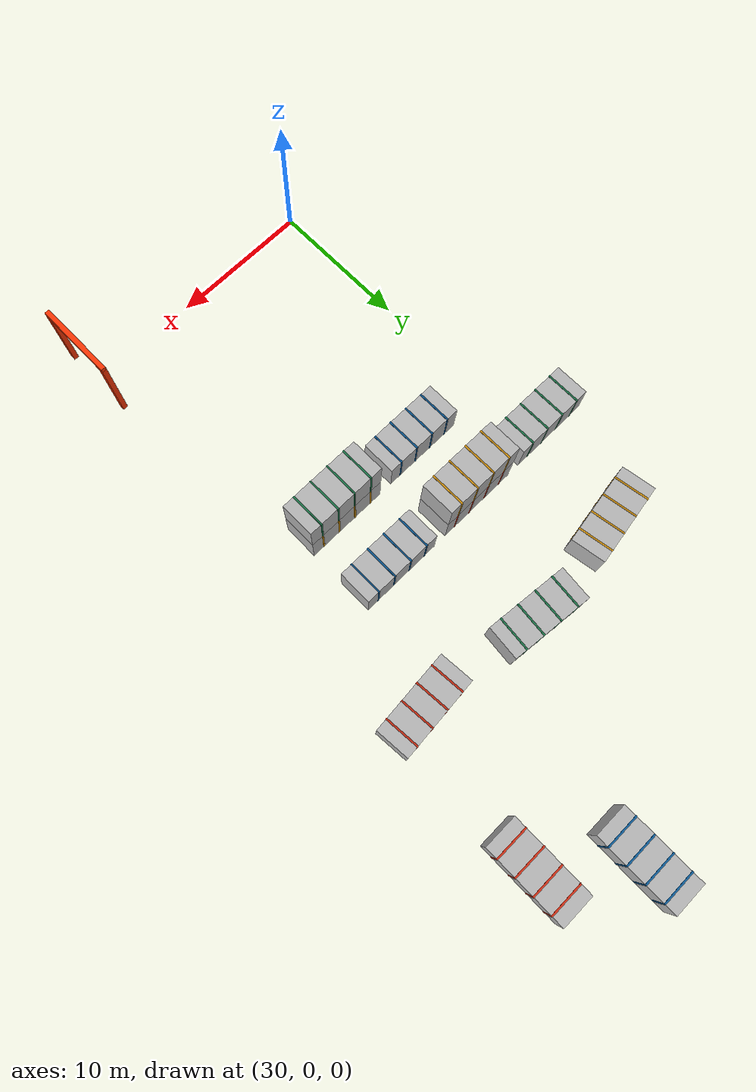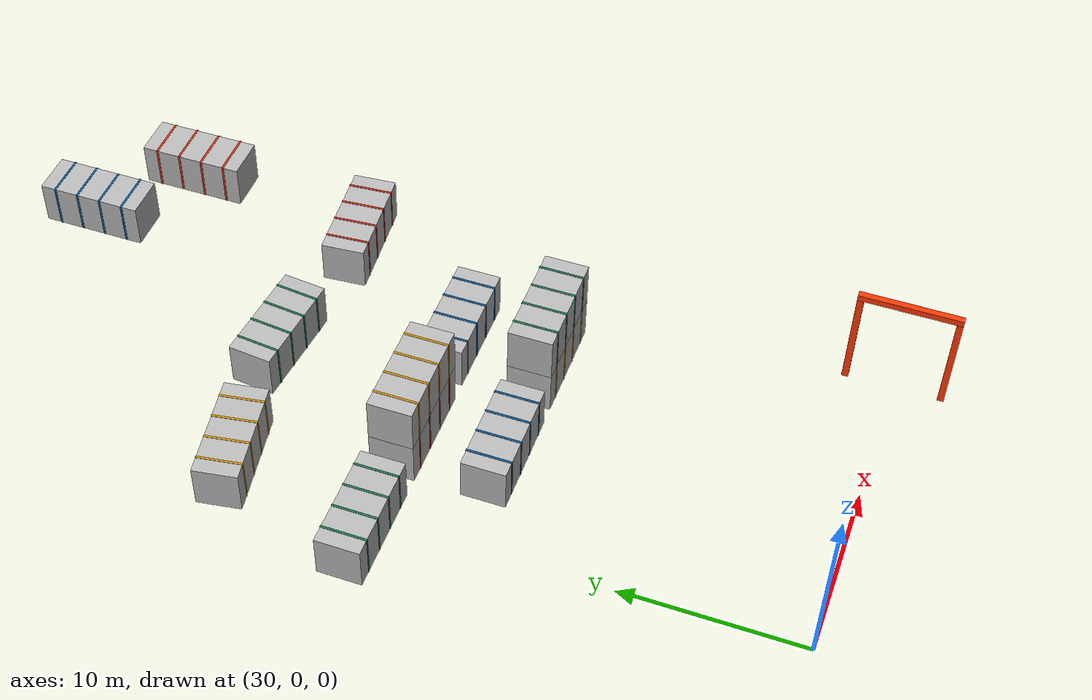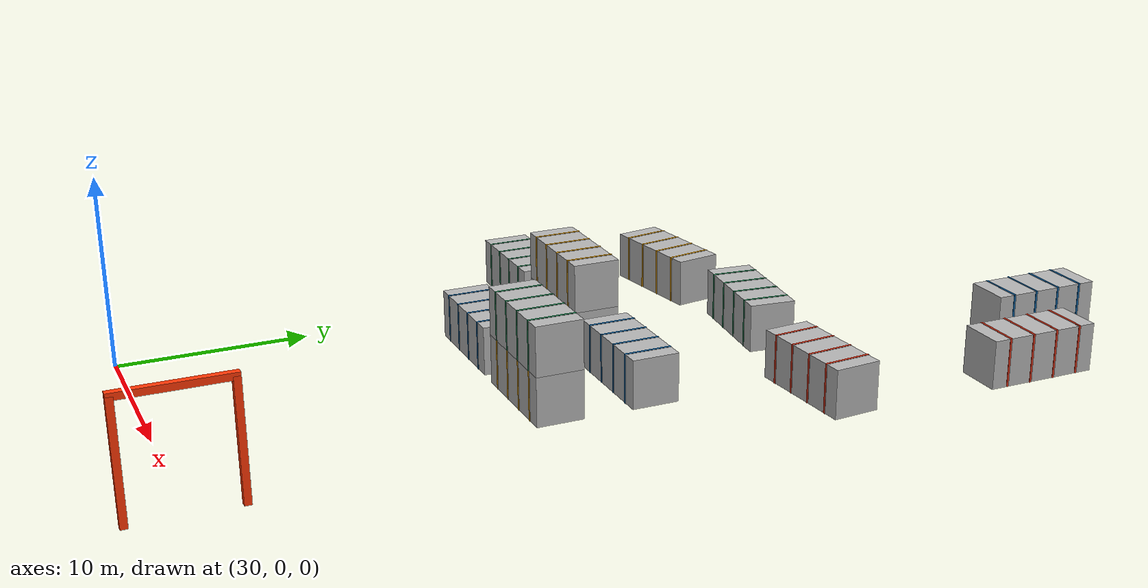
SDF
<sdf version="1.6">
 <world name="uav_complex_120m">
  <model name="overhead_gate_48m">
   <static>true</static>
   <link name="left_post">
    <pose>0 2.6 3 0 0 0</pose>
    <collision name="collision">
     <geometry><box><size>0.35 0.35 6</size></box></geometry>
     <laser_retro>100</laser_retro>
     <surface><friction><ode><mu>1.0</mu><mu2>1.0</mu2></ode></friction></surface>
    </collision>
    <visual name="visual">
     <geometry><box><size>0.35 0.35 6</size></box></geometry>
     <material>
      <ambient>1 0.22 0.025 1</ambient>
      <diffuse>1 0.22 0.025 1</diffuse>
      <specular>0.08 0.08 0.08 1</specular>
     </material>
    </visual>
   </link>
   <link name="right_post">
    <pose>0 -2.6 3 0 0 0</pose>
    <collision name="collision">
     <geometry><box><size>0.35 0.35 6</size></box></geometry>
     <laser_retro>100</laser_retro>
     <surface><friction><ode><mu>1.0</mu><mu2>1.0</mu2></ode></friction></surface>
    </collision>
    <visual name="visual">
     <geometry><box><size>0.35 0.35 6</size></box></geometry>
     <material>
      <ambient>1 0.22 0.025 1</ambient>
      <diffuse>1 0.22 0.025 1</diffuse>
      <specular>0.08 0.08 0.08 1</specular>
     </material>
    </visual>
   </link>
   <link name="top_beam">
    <pose>0 0 6 0 0 0</pose>
    <collision name="collision">
     <geometry><box><size>0.35 5.55 0.35</size></box></geometry>
     <laser_retro>100</laser_retro>
     <surface><friction><ode><mu>1.0</mu><mu2>1.0</mu2></ode></friction></surface>
    </collision>
    <visual name="visual">
     <geometry><box><size>0.35 5.55 0.35</size></box></geometry>
     <material>
      <ambient>1 0.22 0.025 1</ambient>
      <diffuse>1 0.22 0.025 1</diffuse>
      <specular>0.08 0.08 0.08 1</specular>
     </material>
    </visual>
   </link>
   <pose>48 0 0 0 0 0</pose>
  </model>
  <model name="container_1">
   <static>true</static>
   <link name="container">
    <pose>0 0 1.275 0 0 0</pose>
    <collision name="collision">
     <geometry><box><size>6 2.45 2.55</size></box></geometry>
     <laser_retro>100</laser_retro>
     <surface><friction><ode><mu>1.0</mu><mu2>1.0</mu2></ode></friction></surface>
    </collision>
    <visual name="visual">
     <geometry><box><size>6 2.45 2.55</size></box></geometry>
     <material>
      <script>
       <uri>model://uav_complex_scene/materials/scripts</uri>
       <uri>model://uav_complex_scene/materials/textures</uri>
       <name>UAVComplex/RustedSteel</name>
      </script>
     </material>
    </visual>
   </link>
   <link name="rib_-2.1">
    <pose>-2.1 0 1.28 0 0 0</pose>
    <visual name="visual">
     <geometry><box><size>0.12 2.49 2.58</size></box></geometry>
     <material>
      <ambient>0.05 0.35 0.58 1</ambient>
      <diffuse>0.05 0.35 0.58 1</diffuse>
      <specular>0.08 0.08 0.08 1</specular>
     </material>
    </visual>
   </link>
   <link name="rib_-0.7">
    <pose>-0.7 0 1.28 0 0 0</pose>
    <visual name="visual">
     <geometry><box><size>0.12 2.49 2.58</size></box></geometry>
     <material>
      <ambient>0.05 0.35 0.58 1</ambient>
      <diffuse>0.05 0.35 0.58 1</diffuse>
      <specular>0.08 0.08 0.08 1</specular>
     </material>
    </visual>
   </link>
   <link name="rib_+0.7">
    <pose>0.7 0 1.28 0 0 0</pose>
    <visual name="visual">
     <geometry><box><size>0.12 2.49 2.58</size></box></geometry>
     <material>
      <ambient>0.05 0.35 0.58 1</ambient>
      <diffuse>0.05 0.35 0.58 1</diffuse>
      <specular>0.08 0.08 0.08 1</specular>
     </material>
    </visual>
   </link>
   <link name="rib_+2.1">
    <pose>2.1 0 1.28 0 0 0</pose>
    <visual name="visual">
     <geometry><box><size>0.12 2.49 2.58</size></box></geometry>
     <material>
      <ambient>0.05 0.35 0.58 1</ambient>
      <diffuse>0.05 0.35 0.58 1</diffuse>
      <specular>0.08 0.08 0.08 1</specular>
     </material>
    </visual>
   </link>
   <pose>36 18 0 0 0 0</pose>
  </model>
  <model name="container_2">
   <static>true</static>
   <link name="container">
    <pose>0 0 1.275 0 0 0</pose>
    <collision name="collision">
     <geometry><box><size>6 2.45 2.55</size></box></geometry>
     <laser_retro>100</laser_retro>
     <surface><friction><ode><mu>1.0</mu><mu2>1.0</mu2></ode></friction></surface>
    </collision>
    <visual name="visual">
     <geometry><box><size>6 2.45 2.55</size></box></geometry>
     <material>
      <script>
       <uri>model://uav_complex_scene/materials/scripts</uri>
       <uri>model://uav_complex_scene/materials/textures</uri>
       <name>UAVComplex/RustedSteel</name>
      </script>
     </material>
    </visual>
   </link>
   <link name="rib_-2.1">
    <pose>-2.1 0 1.28 0 0 0</pose>
    <visual name="visual">
     <geometry><box><size>0.12 2.49 2.58</size></box></geometry>
     <material>
      <ambient>0.83 0.58 0.06 1</ambient>
      <diffuse>0.83 0.58 0.06 1</diffuse>
      <specular>0.08 0.08 0.08 1</specular>
     </material>
    </visual>
   </link>
   <link name="rib_-0.7">
    <pose>-0.7 0 1.28 0 0 0</pose>
    <visual name="visual">
     <geometry><box><size>0.12 2.49 2.58</size></box></geometry>
     <material>
      <ambient>0.83 0.58 0.06 1</ambient>
      <diffuse>0.83 0.58 0.06 1</diffuse>
      <specular>0.08 0.08 0.08 1</specular>
     </material>
    </visual>
   </link>
   <link name="rib_+0.7">
    <pose>0.7 0 1.28 0 0 0</pose>
    <visual name="visual">
     <geometry><box><size>0.12 2.49 2.58</size></box></geometry>
     <material>
      <ambient>0.83 0.58 0.06 1</ambient>
      <diffuse>0.83 0.58 0.06 1</diffuse>
      <specular>0.08 0.08 0.08 1</specular>
     </material>
    </visual>
   </link>
   <link name="rib_+2.1">
    <pose>2.1 0 1.28 0 0 0</pose>
    <visual name="visual">
     <geometry><box><size>0.12 2.49 2.58</size></box></geometry>
     <material>
      <ambient>0.83 0.58 0.06 1</ambient>
      <diffuse>0.83 0.58 0.06 1</diffuse>
      <specular>0.08 0.08 0.08 1</specular>
     </material>
    </visual>
   </link>
   <pose>43 18 0 0 0 0</pose>
  </model>
  <model name="container_3">
   <static>true</static>
   <link name="container">
    <pose>0 0 1.275 0 0 0</pose>
    <collision name="collision">
     <geometry><box><size>6 2.45 2.55</size></box></geometry>
     <laser_retro>100</laser_retro>
     <surface><friction><ode><mu>1.0</mu><mu2>1.0</mu2></ode></friction></surface>
    </collision>
    <visual name="visual">
     <geometry><box><size>6 2.45 2.55</size></box></geometry>
     <material>
      <script>
       <uri>model://uav_complex_scene/materials/scripts</uri>
       <uri>model://uav_complex_scene/materials/textures</uri>
       <name>UAVComplex/RustedSteel</name>
      </script>
     </material>
    </visual>
   </link>
   <link name="rib_-2.1">
    <pose>-2.1 0 1.28 0 0 0</pose>
    <visual name="visual">
     <geometry><box><size>0.12 2.49 2.58</size></box></geometry>
     <material>
      <ambient>0.12 0.48 0.3 1</ambient>
      <diffuse>0.12 0.48 0.3 1</diffuse>
      <specular>0.08 0.08 0.08 1</specular>
     </material>
    </visual>
   </link>
   <link name="rib_-0.7">
    <pose>-0.7 0 1.28 0 0 0</pose>
    <visual name="visual">
     <geometry><box><size>0.12 2.49 2.58</size></box></geometry>
     <material>
      <ambient>0.12 0.48 0.3 1</ambient>
      <diffuse>0.12 0.48 0.3 1</diffuse>
      <specular>0.08 0.08 0.08 1</specular>
     </material>
    </visual>
   </link>
   <link name="rib_+0.7">
    <pose>0.7 0 1.28 0 0 0</pose>
    <visual name="visual">
     <geometry><box><size>0.12 2.49 2.58</size></box></geometry>
     <material>
      <ambient>0.12 0.48 0.3 1</ambient>
      <diffuse>0.12 0.48 0.3 1</diffuse>
      <specular>0.08 0.08 0.08 1</specular>
     </material>
    </visual>
   </link>
   <link name="rib_+2.1">
    <pose>2.1 0 1.28 0 0 0</pose>
    <visual name="visual">
     <geometry><box><size>0.12 2.49 2.58</size></box></geometry>
     <material>
      <ambient>0.12 0.48 0.3 1</ambient>
      <diffuse>0.12 0.48 0.3 1</diffuse>
      <specular>0.08 0.08 0.08 1</specular>
     </material>
    </visual>
   </link>
   <pose>29 23 0 0 0 0</pose>
  </model>
  <model name="container_4">
   <static>true</static>
   <link name="container">
    <pose>0 0 1.275 0 0 0</pose>
    <collision name="collision">
     <geometry><box><size>6 2.45 2.55</size></box></geometry>
     <laser_retro>100</laser_retro>
     <surface><friction><ode><mu>1.0</mu><mu2>1.0</mu2></ode></friction></surface>
    </collision>
    <visual name="visual">
     <geometry><box><size>6 2.45 2.55</size></box></geometry>
     <material>
      <script>
       <uri>model://uav_complex_scene/materials/scripts</uri>
       <uri>model://uav_complex_scene/materials/textures</uri>
       <name>UAVComplex/RustedSteel</name>
      </script>
     </material>
    </visual>
   </link>
   <link name="rib_-2.1">
    <pose>-2.1 0 1.28 0 0 0</pose>
    <visual name="visual">
     <geometry><box><size>0.12 2.49 2.58</size></box></geometry>
     <material>
      <ambient>0.8 0.18 0.08 1</ambient>
      <diffuse>0.8 0.18 0.08 1</diffuse>
      <specular>0.08 0.08 0.08 1</specular>
     </material>
    </visual>
   </link>
   <link name="rib_-0.7">
    <pose>-0.7 0 1.28 0 0 0</pose>
    <visual name="visual">
     <geometry><box><size>0.12 2.49 2.58</size></box></geometry>
     <material>
      <ambient>0.8 0.18 0.08 1</ambient>
      <diffuse>0.8 0.18 0.08 1</diffuse>
      <specular>0.08 0.08 0.08 1</specular>
     </material>
    </visual>
   </link>
   <link name="rib_+0.7">
    <pose>0.7 0 1.28 0 0 0</pose>
    <visual name="visual">
     <geometry><box><size>0.12 2.49 2.58</size></box></geometry>
     <material>
      <ambient>0.8 0.18 0.08 1</ambient>
      <diffuse>0.8 0.18 0.08 1</diffuse>
      <specular>0.08 0.08 0.08 1</specular>
     </material>
    </visual>
   </link>
   <link name="rib_+2.1">
    <pose>2.1 0 1.28 0 0 0</pose>
    <visual name="visual">
     <geometry><box><size>0.12 2.49 2.58</size></box></geometry>
     <material>
      <ambient>0.8 0.18 0.08 1</ambient>
      <diffuse>0.8 0.18 0.08 1</diffuse>
      <specular>0.08 0.08 0.08 1</specular>
     </material>
    </visual>
   </link>
   <pose>36 23 0 0 0 0</pose>
  </model>
  <model name="container_5">
   <static>true</static>
   <link name="container">
    <pose>0 0 1.275 0 0 0</pose>
    <collision name="collision">
     <geometry><box><size>6 2.45 2.55</size></box></geometry>
     <laser_retro>100</laser_retro>
     <surface><friction><ode><mu>1.0</mu><mu2>1.0</mu2></ode></friction></surface>
    </collision>
    <visual name="visual">
     <geometry><box><size>6 2.45 2.55</size></box></geometry>
     <material>
      <script>
       <uri>model://uav_complex_scene/materials/scripts</uri>
       <uri>model://uav_complex_scene/materials/textures</uri>
       <name>UAVComplex/RustedSteel</name>
      </script>
     </material>
    </visual>
   </link>
   <link name="rib_-2.1">
    <pose>-2.1 0 1.28 0 0 0</pose>
    <visual name="visual">
     <geometry><box><size>0.12 2.49 2.58</size></box></geometry>
     <material>
      <ambient>0.05 0.35 0.58 1</ambient>
      <diffuse>0.05 0.35 0.58 1</diffuse>
      <specular>0.08 0.08 0.08 1</specular>
     </material>
    </visual>
   </link>
   <link name="rib_-0.7">
    <pose>-0.7 0 1.28 0 0 0</pose>
    <visual name="visual">
     <geometry><box><size>0.12 2.49 2.58</size></box></geometry>
     <material>
      <ambient>0.05 0.35 0.58 1</ambient>
      <diffuse>0.05 0.35 0.58 1</diffuse>
      <specular>0.08 0.08 0.08 1</specular>
     </material>
    </visual>
   </link>
   <link name="rib_+0.7">
    <pose>0.7 0 1.28 0 0 0</pose>
    <visual name="visual">
     <geometry><box><size>0.12 2.49 2.58</size></box></geometry>
     <material>
      <ambient>0.05 0.35 0.58 1</ambient>
      <diffuse>0.05 0.35 0.58 1</diffuse>
      <specular>0.08 0.08 0.08 1</specular>
     </material>
    </visual>
   </link>
   <link name="rib_+2.1">
    <pose>2.1 0 1.28 0 0 0</pose>
    <visual name="visual">
     <geometry><box><size>0.12 2.49 2.58</size></box></geometry>
     <material>
      <ambient>0.05 0.35 0.58 1</ambient>
      <diffuse>0.05 0.35 0.58 1</diffuse>
      <specular>0.08 0.08 0.08 1</specular>
     </material>
    </visual>
   </link>
   <pose>43 23 0 0 0 0</pose>
  </model>
  <model name="container_6">
   <static>true</static>
   <link name="container">
    <pose>0 0 1.275 0 0 0</pose>
    <collision name="collision">
     <geometry><box><size>6 2.45 2.55</size></box></geometry>
     <laser_retro>100</laser_retro>
     <surface><friction><ode><mu>1.0</mu><mu2>1.0</mu2></ode></friction></surface>
    </collision>
    <visual name="visual">
     <geometry><box><size>6 2.45 2.55</size></box></geometry>
     <material>
      <script>
       <uri>model://uav_complex_scene/materials/scripts</uri>
       <uri>model://uav_complex_scene/materials/textures</uri>
       <name>UAVComplex/RustedSteel</name>
      </script>
     </material>
    </visual>
   </link>
   <link name="rib_-2.1">
    <pose>-2.1 0 1.28 0 0 0</pose>
    <visual name="visual">
     <geometry><box><size>0.12 2.49 2.58</size></box></geometry>
     <material>
      <ambient>0.83 0.58 0.06 1</ambient>
      <diffuse>0.83 0.58 0.06 1</diffuse>
      <specular>0.08 0.08 0.08 1</specular>
     </material>
    </visual>
   </link>
   <link name="rib_-0.7">
    <pose>-0.7 0 1.28 0 0 0</pose>
    <visual name="visual">
     <geometry><box><size>0.12 2.49 2.58</size></box></geometry>
     <material>
      <ambient>0.83 0.58 0.06 1</ambient>
      <diffuse>0.83 0.58 0.06 1</diffuse>
      <specular>0.08 0.08 0.08 1</specular>
     </material>
    </visual>
   </link>
   <link name="rib_+0.7">
    <pose>0.7 0 1.28 0 0 0</pose>
    <visual name="visual">
     <geometry><box><size>0.12 2.49 2.58</size></box></geometry>
     <material>
      <ambient>0.83 0.58 0.06 1</ambient>
      <diffuse>0.83 0.58 0.06 1</diffuse>
      <specular>0.08 0.08 0.08 1</specular>
     </material>
    </visual>
   </link>
   <link name="rib_+2.1">
    <pose>2.1 0 1.28 0 0 0</pose>
    <visual name="visual">
     <geometry><box><size>0.12 2.49 2.58</size></box></geometry>
     <material>
      <ambient>0.83 0.58 0.06 1</ambient>
      <diffuse>0.83 0.58 0.06 1</diffuse>
      <specular>0.08 0.08 0.08 1</specular>
     </material>
    </visual>
   </link>
   <pose>31 31 0 0 0 0.16</pose>
  </model>
  <model name="container_7">
   <static>true</static>
   <link name="container">
    <pose>0 0 1.275 0 0 0</pose>
    <collision name="collision">
     <geometry><box><size>6 2.45 2.55</size></box></geometry>
     <laser_retro>100</laser_retro>
     <surface><friction><ode><mu>1.0</mu><mu2>1.0</mu2></ode></friction></surface>
    </collision>
    <visual name="visual">
     <geometry><box><size>6 2.45 2.55</size></box></geometry>
     <material>
      <script>
       <uri>model://uav_complex_scene/materials/scripts</uri>
       <uri>model://uav_complex_scene/materials/textures</uri>
       <name>UAVComplex/RustedSteel</name>
      </script>
     </material>
    </visual>
   </link>
   <link name="rib_-2.1">
    <pose>-2.1 0 1.28 0 0 0</pose>
    <visual name="visual">
     <geometry><box><size>0.12 2.49 2.58</size></box></geometry>
     <material>
      <ambient>0.12 0.48 0.3 1</ambient>
      <diffuse>0.12 0.48 0.3 1</diffuse>
      <specular>0.08 0.08 0.08 1</specular>
     </material>
    </visual>
   </link>
   <link name="rib_-0.7">
    <pose>-0.7 0 1.28 0 0 0</pose>
    <visual name="visual">
     <geometry><box><size>0.12 2.49 2.58</size></box></geometry>
     <material>
      <ambient>0.12 0.48 0.3 1</ambient>
      <diffuse>0.12 0.48 0.3 1</diffuse>
      <specular>0.08 0.08 0.08 1</specular>
     </material>
    </visual>
   </link>
   <link name="rib_+0.7">
    <pose>0.7 0 1.28 0 0 0</pose>
    <visual name="visual">
     <geometry><box><size>0.12 2.49 2.58</size></box></geometry>
     <material>
      <ambient>0.12 0.48 0.3 1</ambient>
      <diffuse>0.12 0.48 0.3 1</diffuse>
      <specular>0.08 0.08 0.08 1</specular>
     </material>
    </visual>
   </link>
   <link name="rib_+2.1">
    <pose>2.1 0 1.28 0 0 0</pose>
    <visual name="visual">
     <geometry><box><size>0.12 2.49 2.58</size></box></geometry>
     <material>
      <ambient>0.12 0.48 0.3 1</ambient>
      <diffuse>0.12 0.48 0.3 1</diffuse>
      <specular>0.08 0.08 0.08 1</specular>
     </material>
    </visual>
   </link>
   <pose>39 32 0 0 0 -0.1</pose>
  </model>
  <model name="container_8">
   <static>true</static>
   <link name="container">
    <pose>0 0 1.275 0 0 0</pose>
    <collision name="collision">
     <geometry><box><size>6 2.45 2.55</size></box></geometry>
     <laser_retro>100</laser_retro>
     <surface><friction><ode><mu>1.0</mu><mu2>1.0</mu2></ode></friction></surface>
    </collision>
    <visual name="visual">
     <geometry><box><size>6 2.45 2.55</size></box></geometry>
     <material>
      <script>
       <uri>model://uav_complex_scene/materials/scripts</uri>
       <uri>model://uav_complex_scene/materials/textures</uri>
       <name>UAVComplex/RustedSteel</name>
      </script>
     </material>
    </visual>
   </link>
   <link name="rib_-2.1">
    <pose>-2.1 0 1.28 0 0 0</pose>
    <visual name="visual">
     <geometry><box><size>0.12 2.49 2.58</size></box></geometry>
     <material>
      <ambient>0.8 0.18 0.08 1</ambient>
      <diffuse>0.8 0.18 0.08 1</diffuse>
      <specular>0.08 0.08 0.08 1</specular>
     </material>
    </visual>
   </link>
   <link name="rib_-0.7">
    <pose>-0.7 0 1.28 0 0 0</pose>
    <visual name="visual">
     <geometry><box><size>0.12 2.49 2.58</size></box></geometry>
     <material>
      <ambient>0.8 0.18 0.08 1</ambient>
      <diffuse>0.8 0.18 0.08 1</diffuse>
      <specular>0.08 0.08 0.08 1</specular>
     </material>
    </visual>
   </link>
   <link name="rib_+0.7">
    <pose>0.7 0 1.28 0 0 0</pose>
    <visual name="visual">
     <geometry><box><size>0.12 2.49 2.58</size></box></geometry>
     <material>
      <ambient>0.8 0.18 0.08 1</ambient>
      <diffuse>0.8 0.18 0.08 1</diffuse>
      <specular>0.08 0.08 0.08 1</specular>
     </material>
    </visual>
   </link>
   <link name="rib_+2.1">
    <pose>2.1 0 1.28 0 0 0</pose>
    <visual name="visual">
     <geometry><box><size>0.12 2.49 2.58</size></box></geometry>
     <material>
      <ambient>0.8 0.18 0.08 1</ambient>
      <diffuse>0.8 0.18 0.08 1</diffuse>
      <specular>0.08 0.08 0.08 1</specular>
     </material>
    </visual>
   </link>
   <pose>48 31 0 0 0 0.08</pose>
  </model>
  <model name="container_10">
   <static>true</static>
   <link name="container">
    <pose>0 0 1.275 0 0 0</pose>
    <collision name="collision">
     <geometry><box><size>6 2.45 2.55</size></box></geometry>
     <laser_retro>100</laser_retro>
     <surface><friction><ode><mu>1.0</mu><mu2>1.0</mu2></ode></friction></surface>
    </collision>
    <visual name="visual">
     <geometry><box><size>6 2.45 2.55</size></box></geometry>
     <material>
      <script>
       <uri>model://uav_complex_scene/materials/scripts</uri>
       <uri>model://uav_complex_scene/materials/textures</uri>
       <name>UAVComplex/RustedSteel</name>
      </script>
     </material>
    </visual>
   </link>
   <link name="rib_-2.1">
    <pose>-2.1 0 1.28 0 0 0</pose>
    <visual name="visual">
     <geometry><box><size>0.12 2.49 2.58</size></box></geometry>
     <material>
      <ambient>0.83 0.58 0.06 1</ambient>
      <diffuse>0.83 0.58 0.06 1</diffuse>
      <specular>0.08 0.08 0.08 1</specular>
     </material>
    </visual>
   </link>
   <link name="rib_-0.7">
    <pose>-0.7 0 1.28 0 0 0</pose>
    <visual name="visual">
     <geometry><box><size>0.12 2.49 2.58</size></box></geometry>
     <material>
      <ambient>0.83 0.58 0.06 1</ambient>
      <diffuse>0.83 0.58 0.06 1</diffuse>
      <specular>0.08 0.08 0.08 1</specular>
     </material>
    </visual>
   </link>
   <link name="rib_+0.7">
    <pose>0.7 0 1.28 0 0 0</pose>
    <visual name="visual">
     <geometry><box><size>0.12 2.49 2.58</size></box></geometry>
     <material>
      <ambient>0.83 0.58 0.06 1</ambient>
      <diffuse>0.83 0.58 0.06 1</diffuse>
      <specular>0.08 0.08 0.08 1</specular>
     </material>
    </visual>
   </link>
   <link name="rib_+2.1">
    <pose>2.1 0 1.28 0 0 0</pose>
    <visual name="visual">
     <geometry><box><size>0.12 2.49 2.58</size></box></geometry>
     <material>
      <ambient>0.83 0.58 0.06 1</ambient>
      <diffuse>0.83 0.58 0.06 1</diffuse>
      <specular>0.08 0.08 0.08 1</specular>
     </material>
    </visual>
   </link>
   <pose>36 23 2.55 0 0 0</pose>
  </model>
  <model name="container_11">
   <static>true</static>
   <link name="container">
    <pose>0 0 1.275 0 0 0</pose>
    <collision name="collision">
     <geometry><box><size>6 2.45 2.55</size></box></geometry>
     <laser_retro>100</laser_retro>
     <surface><friction><ode><mu>1.0</mu><mu2>1.0</mu2></ode></friction></surface>
    </collision>
    <visual name="visual">
     <geometry><box><size>6 2.45 2.55</size></box></geometry>
     <material>
      <script>
       <uri>model://uav_complex_scene/materials/scripts</uri>
       <uri>model://uav_complex_scene/materials/textures</uri>
       <name>UAVComplex/RustedSteel</name>
      </script>
     </material>
    </visual>
   </link>
   <link name="rib_-2.1">
    <pose>-2.1 0 1.28 0 0 0</pose>
    <visual name="visual">
     <geometry><box><size>0.12 2.49 2.58</size></box></geometry>
     <material>
      <ambient>0.12 0.48 0.3 1</ambient>
      <diffuse>0.12 0.48 0.3 1</diffuse>
      <specular>0.08 0.08 0.08 1</specular>
     </material>
    </visual>
   </link>
   <link name="rib_-0.7">
    <pose>-0.7 0 1.28 0 0 0</pose>
    <visual name="visual">
     <geometry><box><size>0.12 2.49 2.58</size></box></geometry>
     <material>
      <ambient>0.12 0.48 0.3 1</ambient>
      <diffuse>0.12 0.48 0.3 1</diffuse>
      <specular>0.08 0.08 0.08 1</specular>
     </material>
    </visual>
   </link>
   <link name="rib_+0.7">
    <pose>0.7 0 1.28 0 0 0</pose>
    <visual name="visual">
     <geometry><box><size>0.12 2.49 2.58</size></box></geometry>
     <material>
      <ambient>0.12 0.48 0.3 1</ambient>
      <diffuse>0.12 0.48 0.3 1</diffuse>
      <specular>0.08 0.08 0.08 1</specular>
     </material>
    </visual>
   </link>
   <link name="rib_+2.1">
    <pose>2.1 0 1.28 0 0 0</pose>
    <visual name="visual">
     <geometry><box><size>0.12 2.49 2.58</size></box></geometry>
     <material>
      <ambient>0.12 0.48 0.3 1</ambient>
      <diffuse>0.12 0.48 0.3 1</diffuse>
      <specular>0.08 0.08 0.08 1</specular>
     </material>
    </visual>
   </link>
   <pose>43 18 2.55 0 0 0</pose>
  </model>
  <model name="container_12">
   <static>true</static>
   <link name="container">
    <pose>0 0 1.275 0 0 0</pose>
    <collision name="collision">
     <geometry><box><size>6 2.45 2.55</size></box></geometry>
     <laser_retro>100</laser_retro>
     <surface><friction><ode><mu>1.0</mu><mu2>1.0</mu2></ode></friction></surface>
    </collision>
    <visual name="visual">
     <geometry><box><size>6 2.45 2.55</size></box></geometry>
     <material>
      <script>
       <uri>model://uav_complex_scene/materials/scripts</uri>
       <uri>model://uav_complex_scene/materials/textures</uri>
       <name>UAVComplex/RustedSteel</name>
      </script>
     </material>
    </visual>
   </link>
   <link name="rib_-2.1">
    <pose>-2.1 0 1.28 0 0 0</pose>
    <visual name="visual">
     <geometry><box><size>0.12 2.49 2.58</size></box></geometry>
     <material>
      <ambient>0.8 0.18 0.08 1</ambient>
      <diffuse>0.8 0.18 0.08 1</diffuse>
      <specular>0.08 0.08 0.08 1</specular>
     </material>
    </visual>
   </link>
   <link name="rib_-0.7">
    <pose>-0.7 0 1.28 0 0 0</pose>
    <visual name="visual">
     <geometry><box><size>0.12 2.49 2.58</size></box></geometry>
     <material>
      <ambient>0.8 0.18 0.08 1</ambient>
      <diffuse>0.8 0.18 0.08 1</diffuse>
      <specular>0.08 0.08 0.08 1</specular>
     </material>
    </visual>
   </link>
   <link name="rib_+0.7">
    <pose>0.7 0 1.28 0 0 0</pose>
    <visual name="visual">
     <geometry><box><size>0.12 2.49 2.58</size></box></geometry>
     <material>
      <ambient>0.8 0.18 0.08 1</ambient>
      <diffuse>0.8 0.18 0.08 1</diffuse>
      <specular>0.08 0.08 0.08 1</specular>
     </material>
    </visual>
   </link>
   <link name="rib_+2.1">
    <pose>2.1 0 1.28 0 0 0</pose>
    <visual name="visual">
     <geometry><box><size>0.12 2.49 2.58</size></box></geometry>
     <material>
      <ambient>0.8 0.18 0.08 1</ambient>
      <diffuse>0.8 0.18 0.08 1</diffuse>
      <specular>0.08 0.08 0.08 1</specular>
     </material>
    </visual>
   </link>
   <pose>50 42 0 0 0 1.5708</pose>
  </model>
  <model name="container_13">
   <static>true</static>
   <link name="container">
    <pose>0 0 1.275 0 0 0</pose>
    <collision name="collision">
     <geometry><box><size>6 2.45 2.55</size></box></geometry>
     <laser_retro>100</laser_retro>
     <surface><friction><ode><mu>1.0</mu><mu2>1.0</mu2></ode></friction></surface>
    </collision>
    <visual name="visual">
     <geometry><box><size>6 2.45 2.55</size></box></geometry>
     <material>
      <script>
       <uri>model://uav_complex_scene/materials/scripts</uri>
       <uri>model://uav_complex_scene/materials/textures</uri>
       <name>UAVComplex/RustedSteel</name>
      </script>
     </material>
    </visual>
   </link>
   <link name="rib_-2.1">
    <pose>-2.1 0 1.28 0 0 0</pose>
    <visual name="visual">
     <geometry><box><size>0.12 2.49 2.58</size></box></geometry>
     <material>
      <ambient>0.05 0.35 0.58 1</ambient>
      <diffuse>0.05 0.35 0.58 1</diffuse>
      <specular>0.08 0.08 0.08 1</specular>
     </material>
    </visual>
   </link>
   <link name="rib_-0.7">
    <pose>-0.7 0 1.28 0 0 0</pose>
    <visual name="visual">
     <geometry><box><size>0.12 2.49 2.58</size></box></geometry>
     <material>
      <ambient>0.05 0.35 0.58 1</ambient>
      <diffuse>0.05 0.35 0.58 1</diffuse>
      <specular>0.08 0.08 0.08 1</specular>
     </material>
    </visual>
   </link>
   <link name="rib_+0.7">
    <pose>0.7 0 1.28 0 0 0</pose>
    <visual name="visual">
     <geometry><box><size>0.12 2.49 2.58</size></box></geometry>
     <material>
      <ambient>0.05 0.35 0.58 1</ambient>
      <diffuse>0.05 0.35 0.58 1</diffuse>
      <specular>0.08 0.08 0.08 1</specular>
     </material>
    </visual>
   </link>
   <link name="rib_+2.1">
    <pose>2.1 0 1.28 0 0 0</pose>
    <visual name="visual">
     <geometry><box><size>0.12 2.49 2.58</size></box></geometry>
     <material>
      <ambient>0.05 0.35 0.58 1</ambient>
      <diffuse>0.05 0.35 0.58 1</diffuse>
      <specular>0.08 0.08 0.08 1</specular>
     </material>
    </visual>
   </link>
   <pose>45 46 0 0 0 1.5708</pose>
  </model>
 </world>
</sdf>
